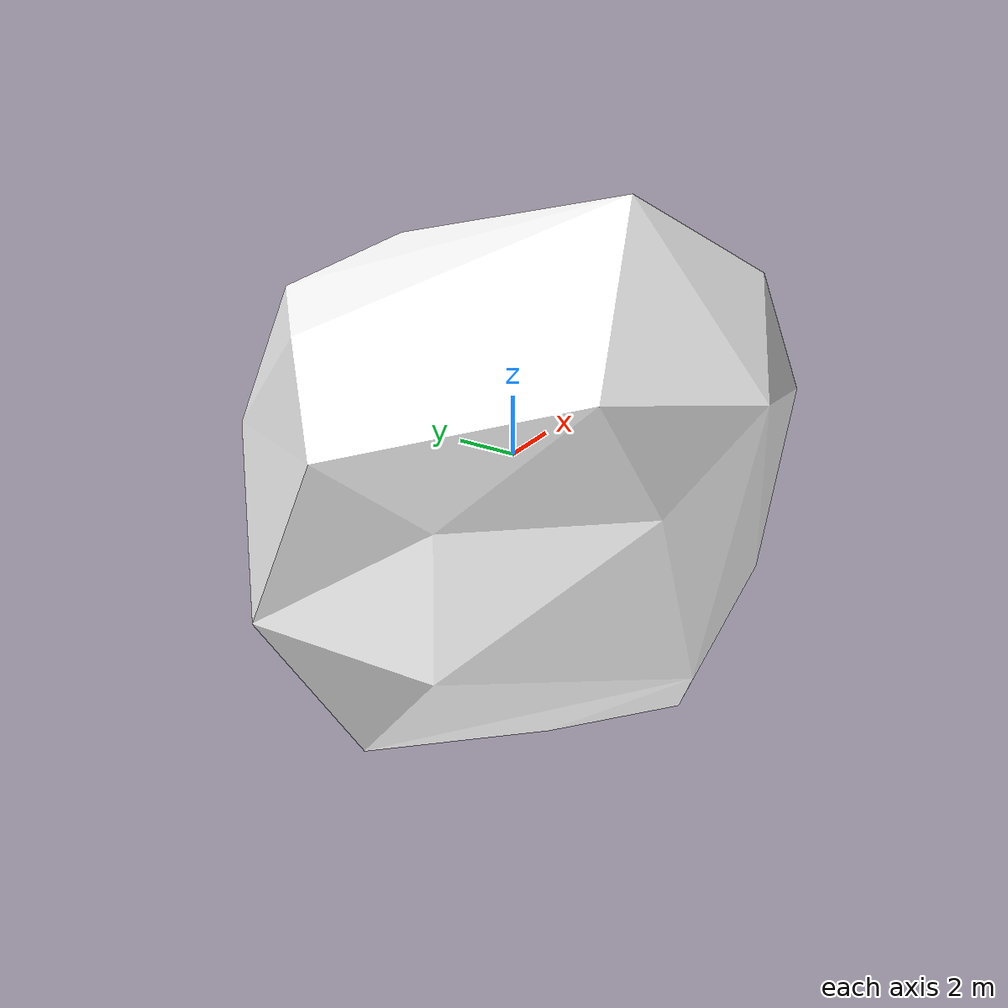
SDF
<?xml version="1.0" ?>
<sdf version="1.6">
    <model name="falling_rock4">
        <link name="base_link">
            <inertial>
                <pose>-0.007531 -0.004988 -0.003053 0 0 0</pose>
                <mass>70.032</mass>
                <inertia>
                    <ixx>1.202</ixx>
                    <ixy>0.052</ixy>
                    <ixz>-0.054</ixz>
                    <iyy>1.196</iyy>
                    <iyz>0.05</iyz>
                    <izz>1.154</izz>
                </inertia>
            </inertial>
            <collision name="collision">
                <geometry>
                    <mesh>
                        <scale>40 40 40</scale>
            <uri>meshes/FallingRock04_Collider.dae</uri>
                    </mesh>
                </geometry>
            </collision>
            <visual name="visual">
                <geometry>
                    <mesh>
                        <scale>40 40 40</scale>
            <uri>meshes/FallingRock04.dae</uri>
                    </mesh>
                </geometry>
                <material>
                    <diffuse>1.0 1.0 1.0</diffuse>
                    <specular>1.0 1.0 1.0</specular>
                    <pbr>
                        <metal>
                            <albedo_map>https://fuel.gazebosim.org/1.0/openrobotics/models/falling rock 4/9/files/materials/textures/FallingRocks_Albedo.jpg</albedo_map>
                            <normal_map>https://fuel.gazebosim.org/1.0/openrobotics/models/falling rock 4/9/files/materials/textures/FallingRocks_Normal.jpg</normal_map>
                            <roughness_map>https://fuel.gazebosim.org/1.0/openrobotics/models/falling rock 4/9/files/materials/textures/FallingRocks_Roughness.jpg</roughness_map>
                        </metal>
                    </pbr>
                    <!-- fallback to script if no PBR support-->
                    <script>
                        <uri>https://fuel.gazebosim.org/1.0/openrobotics/models/falling rock 4/9/files/materials/scripts</uri>
                        <uri>https://fuel.gazebosim.org/1.0/openrobotics/models/falling rock 4/9/files/materials/textures</uri>
                        <name>FallingRocks/FallingRocks_Diffuse</name>
                    </script>
                </material>
            </visual>
        </link>
    </model>
</sdf>
